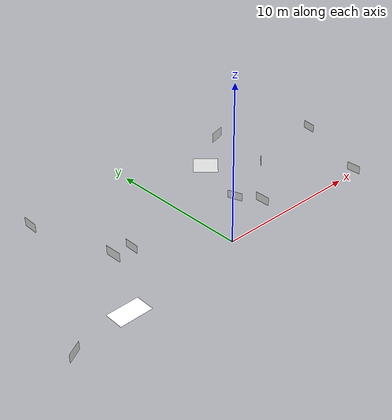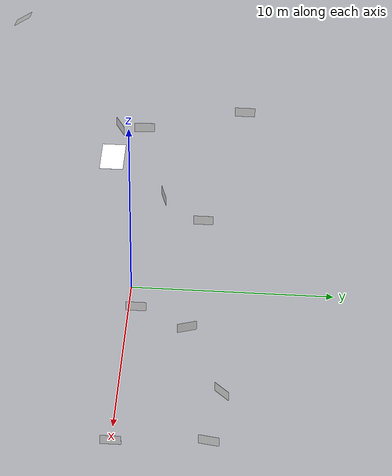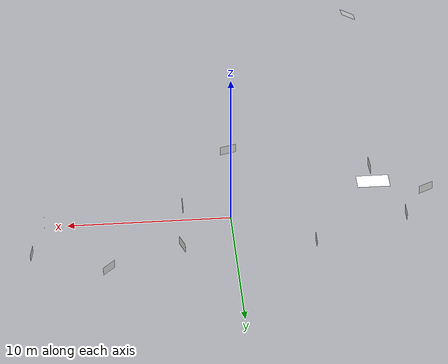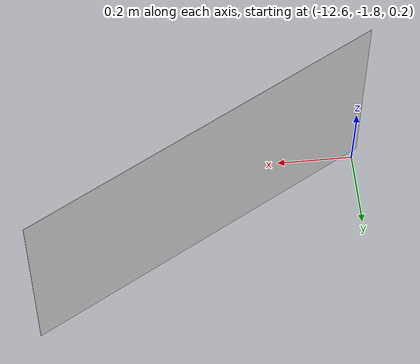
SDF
<sdf version="1.6">
 <world name="simslides">
  <scene><grid>false</grid></scene>
  <physics name="1ms" type="ignored">
   <max_step_size>0.002</max_step_size>
   <real_time_factor>1.0</real_time_factor>
  </physics>
  <plugin filename="ignition-gazebo-physics-system" name="ignition::gazebo::systems::Physics"/>
  <plugin filename="ignition-gazebo-sensors-system" name="ignition::gazebo::systems::Sensors">
   <render_engine>ogre2</render_engine>
  </plugin>
  <plugin filename="ignition-gazebo-user-commands-system" name="ignition::gazebo::systems::UserCommands"/>
  <plugin filename="ignition-gazebo-scene-broadcaster-system" name="ignition::gazebo::systems::SceneBroadcaster"/>
  <plugin filename="libignition-gazebo-triggered-publisher-system.so" name="ignition::gazebo::systems::TriggeredPublisher">
   <input type="ignition.msgs.Int32" topic="/keyboard/keypress"><match field="data">87</match></input>
   <output type="ignition.msgs.Twist" topic="/model/Mecanum_lift/cmd_vel">linear: {x: 1.0, y: 0.0}, angular: {z: 0.0}</output>
  </plugin>
  <plugin filename="libignition-gazebo-triggered-publisher-system.so" name="ignition::gazebo::systems::TriggeredPublisher">
   <input type="ignition.msgs.Int32" topic="/keyboard/keypress"><match field="data">88</match></input>
   <output type="ignition.msgs.Twist" topic="/model/Mecanum_lift/cmd_vel">linear: {x: -1.0, y: 0.0}, angular: {z: 0.0}</output>
  </plugin>
  <plugin filename="libignition-gazebo-triggered-publisher-system.so" name="ignition::gazebo::systems::TriggeredPublisher">
   <input type="ignition.msgs.Int32" topic="/keyboard/keypress"><match field="data">68</match></input>
   <output type="ignition.msgs.Twist" topic="/model/Mecanum_lift/cmd_vel">linear: {x: 0.0, y: -1.0}, angular: {z: 0.0}</output>
  </plugin>
  <plugin filename="libignition-gazebo-triggered-publisher-system.so" name="ignition::gazebo::systems::TriggeredPublisher">
   <input type="ignition.msgs.Int32" topic="/keyboard/keypress"><match field="data">65</match></input>
   <output type="ignition.msgs.Twist" topic="/model/Mecanum_lift/cmd_vel">linear: {x: 0.0, y: 1.0}, angular: {z: 0.0}</output>
  </plugin>
  <plugin filename="libignition-gazebo-triggered-publisher-system.so" name="ignition::gazebo::systems::TriggeredPublisher">
   <input type="ignition.msgs.Int32" topic="/keyboard/keypress"><match field="data">69</match></input>
   <output type="ignition.msgs.Twist" topic="/model/Mecanum_lift/cmd_vel">linear: {x: 0.0, y: 0.0}, angular: {z: -1.0}</output>
  </plugin>
  <plugin filename="libignition-gazebo-triggered-publisher-system.so" name="ignition::gazebo::systems::TriggeredPublisher">
   <input type="ignition.msgs.Int32" topic="/keyboard/keypress"><match field="data">81</match></input>
   <output type="ignition.msgs.Twist" topic="/model/Mecanum_lift/cmd_vel">linear: {x: 0.0, y: 0.0}, angular: {z: 1.0}</output>
  </plugin>
  <plugin filename="libignition-gazebo-triggered-publisher-system.so" name="ignition::gazebo::systems::TriggeredPublisher">
   <input type="ignition.msgs.Int32" topic="/keyboard/keypress"><match field="data">83</match></input>
   <output type="ignition.msgs.Twist" topic="/model/Mecanum_lift/cmd_vel">linear: {x: 0.0, y: 0.0}, angular: {z: 0.0}</output>
  </plugin>
  <model name="slide-0">
   <pose>-7.716 -6 10.2 -0.45 0 -0.74</pose>
   <static>1</static>
   <link name="link">
    <pose>0 0 0.45 0 0 0</pose>
    <visual name="visual">
     <cast_shadows>0</cast_shadows>
     <geometry><box><size>1.0 0.001 0.54</size></box></geometry>
     <material>
      <diffuse>1 1 1 1</diffuse>
      <emissive>0.5 0.5 0.5 1</emissive>
      <pbr>
       <metal>
        <albedo_map>slides/slide-0.png</albedo_map>
        <emissive_map>slides/slide-0.png</emissive_map>
        <roughness>0</roughness>
       </metal>
      </pbr>
     </material>
    </visual>
   </link>
  </model>
  <model name="slide-1">
   <pose>-8.4 0 3 0 0 -1.52</pose>
   <static>1</static>
   <link name="link">
    <pose>0 0 0.45 0 0 0</pose>
    <visual name="visual">
     <cast_shadows>0</cast_shadows>
     <geometry><box><size>1.0 0.001 0.54</size></box></geometry>
     <material>
      <diffuse>1 1 1 1</diffuse>
      <emissive>0.5 0.5 0.5 1</emissive>
      <pbr>
       <metal>
        <albedo_map>slides/slide-1.png</albedo_map>
        <emissive_map>slides/slide-1.png</emissive_map>
        <roughness>0</roughness>
       </metal>
      </pbr>
     </material>
    </visual>
   </link>
  </model>
  <model name="slide-2">
   <pose>12.24 4.68 1.08 0 0 1.4</pose>
   <static>1</static>
   <link name="link">
    <pose>0 0 0.45 0 0 0</pose>
    <visual name="visual">
     <cast_shadows>0</cast_shadows>
     <geometry><box><size>1.0 0.001 0.54</size></box></geometry>
     <material>
      <diffuse>1 1 1 1</diffuse>
      <emissive>0.5 0.5 0.5 1</emissive>
      <pbr>
       <metal>
        <albedo_map>slides/slide-2.png</albedo_map>
        <emissive_map>slides/slide-2.png</emissive_map>
        <roughness>0</roughness>
       </metal>
      </pbr>
     </material>
    </visual>
   </link>
  </model>
  <model name="slide-3">
   <pose>7.7 5 0 0 0 0.8</pose>
   <static>1</static>
   <link name="link">
    <pose>0 0 0.45 0 0 0</pose>
    <visual name="visual">
     <cast_shadows>0</cast_shadows>
     <geometry><box><size>1.0 0.001 0.54</size></box></geometry>
     <material>
      <diffuse>1 1 1 1</diffuse>
      <emissive>0.5 0.5 0.5 1</emissive>
      <pbr>
       <metal>
        <albedo_map>slides/slide-3.png</albedo_map>
        <emissive_map>slides/slide-3.png</emissive_map>
        <roughness>0</roughness>
       </metal>
      </pbr>
     </material>
    </visual>
   </link>
  </model>
  <model name="slide-5">
   <pose>11.4 0 0 0 0 1.57</pose>
   <static>1</static>
   <link name="link">
    <pose>0 0 0.45 0 0 0</pose>
    <visual name="visual">
     <cast_shadows>0</cast_shadows>
     <geometry><box><size>1.0 0.001 0.54</size></box></geometry>
     <material>
      <diffuse>1 1 1 1</diffuse>
      <emissive>0.5 0.5 0.5 1</emissive>
      <pbr>
       <metal>
        <albedo_map>slides/slide-5.png</albedo_map>
        <emissive_map>slides/slide-5.png</emissive_map>
        <roughness>0</roughness>
       </metal>
      </pbr>
     </material>
    </visual>
   </link>
  </model>
  <model name="slide-4">
   <pose>-8.9 -1.7 1.05 1.57 0 0</pose>
   <static>1</static>
   <link name="link">
    <visual name="visual">
     <cast_shadows>0</cast_shadows>
     <geometry><box><size>2.0 0.001 1.2</size></box></geometry>
     <material>
      <diffuse>1 1 1 1</diffuse>
      <emissive>0.5 0.5 0.5 1</emissive>
      <pbr>
       <metal>
        <albedo_map>slides/slide-4.png</albedo_map>
        <emissive_map>slides/slide-4.png</emissive_map>
        <roughness>0</roughness>
       </metal>
      </pbr>
     </material>
    </visual>
   </link>
  </model>
  <model name="slide-6">
   <pose>3 0.5 1 0 0 1.57</pose>
   <static>1</static>
   <link name="link">
    <pose>0 0 0.45 0 0 0</pose>
    <visual name="visual">
     <transparency>0.01</transparency>
     <cast_shadows>0</cast_shadows>
     <geometry><box><size>1.0 0.001 0.54</size></box></geometry>
     <material>
      <diffuse>1 1 1 1</diffuse>
      <emissive>0.5 0.5 0.5 1</emissive>
      <pbr>
       <metal>
        <albedo_map>slides/slide-6.png</albedo_map>
        <emissive_map>slides/slide-6.png</emissive_map>
        <roughness>0</roughness>
       </metal>
      </pbr>
     </material>
    </visual>
   </link>
  </model>
  <model name="slide-7">
   <pose>-12.18 -1.6 0 0 0 0.5</pose>
   <static>1</static>
   <link name="link">
    <pose>0 0 0.45 0 0 0</pose>
    <visual name="visual">
     <cast_shadows>0</cast_shadows>
     <geometry><box><size>1.0 0.001 0.54</size></box></geometry>
     <material>
      <diffuse>1 1 1 1</diffuse>
      <emissive>0.5 0.5 0.5 1</emissive>
      <pbr>
       <metal>
        <albedo_map>slides/slide-7.png</albedo_map>
        <emissive_map>slides/slide-7.png</emissive_map>
        <roughness>0</roughness>
       </metal>
      </pbr>
     </material>
    </visual>
   </link>
  </model>
  <model name="slide-8">
   <pose>3.2 3 0 0 0 1.9</pose>
   <static>1</static>
   <link name="link">
    <pose>0 0 0.45 0 0 0</pose>
    <visual name="visual">
     <cast_shadows>0</cast_shadows>
     <transparency>0.01</transparency>
     <geometry><box><size>1.0 0.001 0.54</size></box></geometry>
     <material>
      <diffuse>1 1 1 1</diffuse>
      <emissive>0.5 0.5 0.5 1</emissive>
      <pbr>
       <metal>
        <albedo_map>slides/slide-8.png</albedo_map>
        <emissive_map>slides/slide-8.png</emissive_map>
        <roughness>0</roughness>
       </metal>
      </pbr>
     </material>
    </visual>
   </link>
  </model>
  <model name="slide-9">
   <pose>-4.89 3.24 0 0 0 -1.57</pose>
   <static>1</static>
   <link name="link">
    <pose>0 0 0.45 0 0 0</pose>
    <visual name="visual">
     <cast_shadows>0</cast_shadows>
     <transparency>0.01</transparency>
     <geometry><box><size>1.0 0.001 0.54</size></box></geometry>
     <material>
      <diffuse>1 1 1 1</diffuse>
      <emissive>0.5 0.5 0.5 1</emissive>
      <pbr>
       <metal>
        <albedo_map>slides/slide-9.png</albedo_map>
        <emissive_map>slides/slide-9.png</emissive_map>
        <roughness>0</roughness>
       </metal>
      </pbr>
     </material>
    </visual>
   </link>
  </model>
  <model name="slide-10">
   <pose>-10 5 3 0 0 -1.57</pose>
   <static>1</static>
   <link name="link">
    <pose>0 0 0.45 0 0 0</pose>
    <visual name="visual">
     <cast_shadows>0</cast_shadows>
     <geometry><box><size>1.0 0.001 0.54</size></box></geometry>
     <material>
      <diffuse>1 1 1 1</diffuse>
      <emissive>0.5 0.5 0.5 1</emissive>
      <pbr>
       <metal>
        <albedo_map>slides/slide-10.png</albedo_map>
        <emissive_map>slides/slide-10.png</emissive_map>
        <roughness>0</roughness>
       </metal>
      </pbr>
     </material>
    </visual>
   </link>
  </model>
  <model name="slide-11">
   <pose>0.33 1.683 5.826 0 0 0.3</pose>
   <static>1</static>
   <link name="link">
    <pose>0 0 0.45 0 0 0</pose>
    <visual name="visual">
     <cast_shadows>0</cast_shadows>
     <transparency>0.01</transparency>
     <geometry><box><size>1.0 0.001 0.54</size></box></geometry>
     <material>
      <diffuse>1 1 1 1</diffuse>
      <emissive>0.5 0.5 0.5 1</emissive>
      <pbr>
       <metal>
        <albedo_map>slides/slide-11.png</albedo_map>
        <emissive_map>slides/slide-11.png</emissive_map>
        <roughness>0</roughness>
       </metal>
      </pbr>
     </material>
    </visual>
   </link>
  </model>
 </world>
</sdf>
